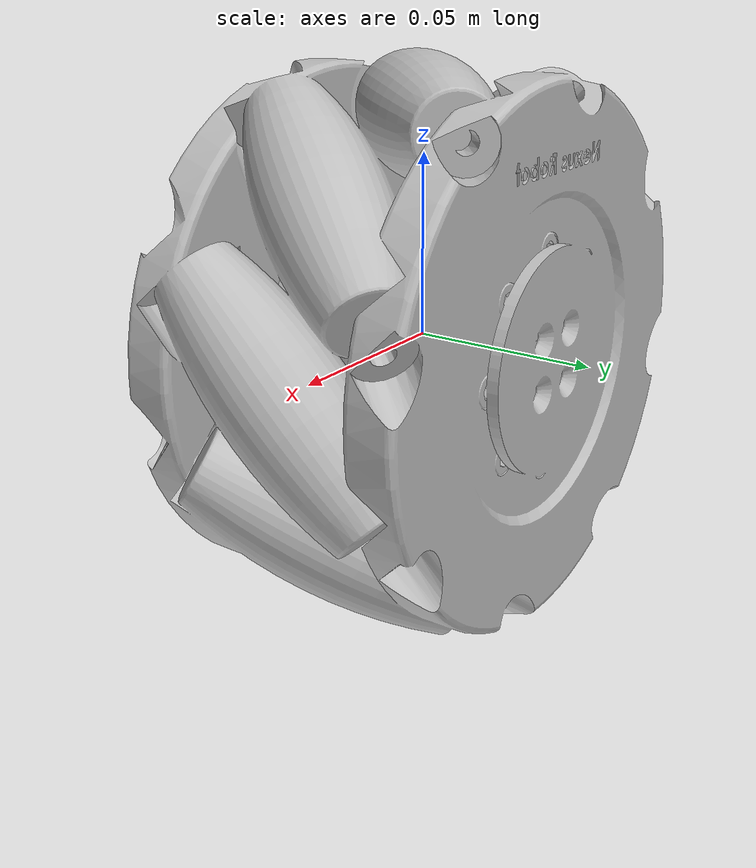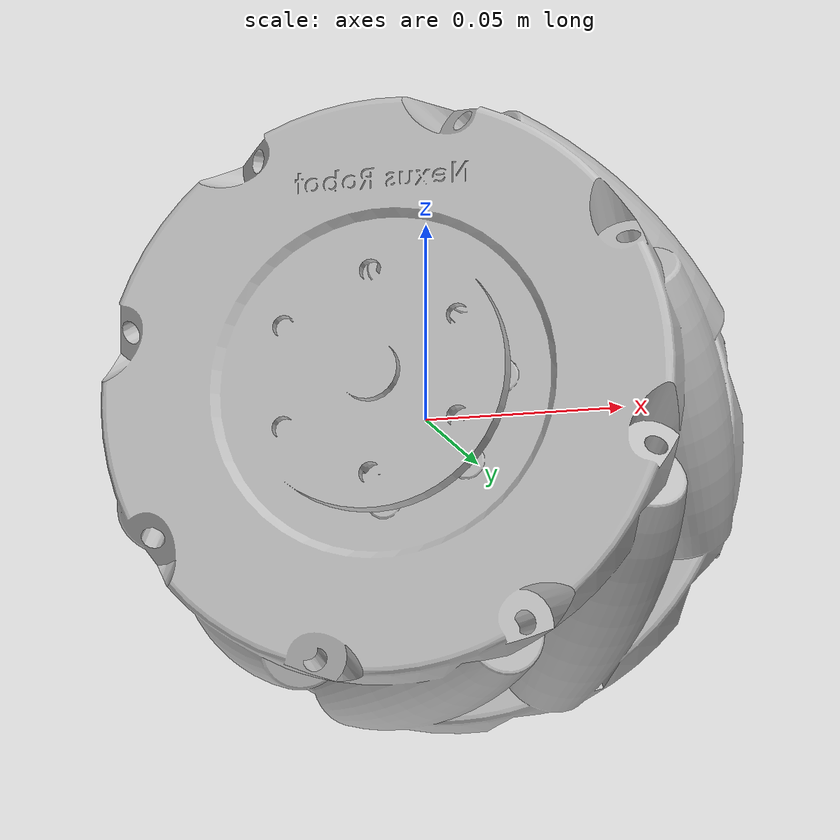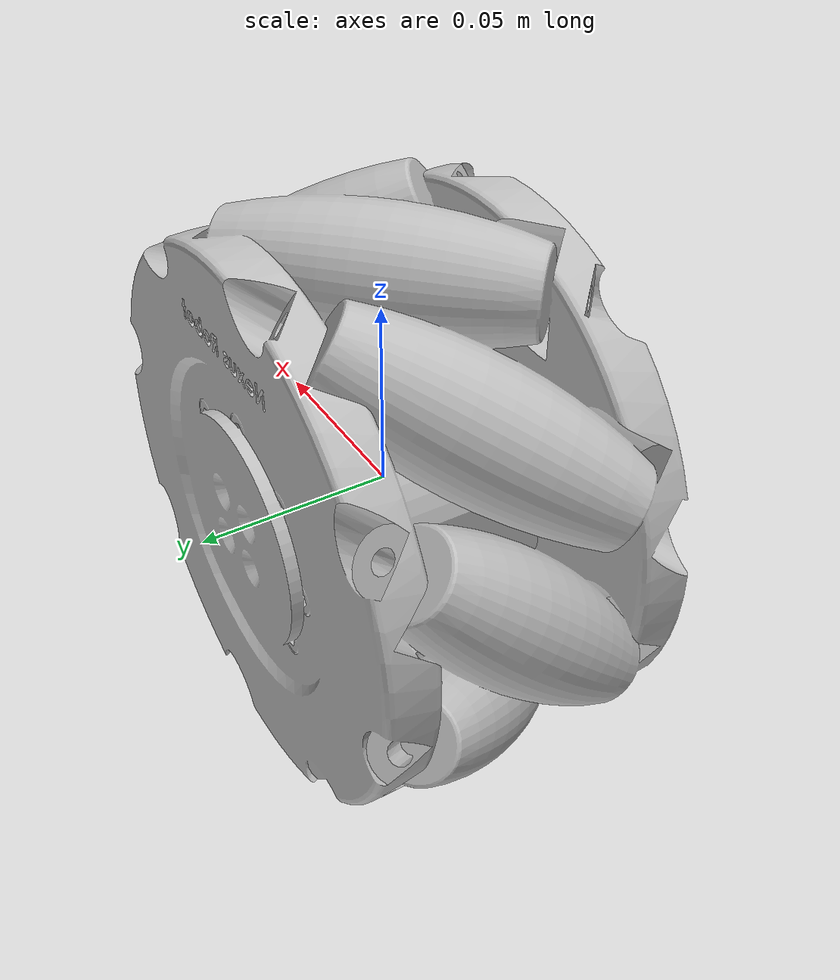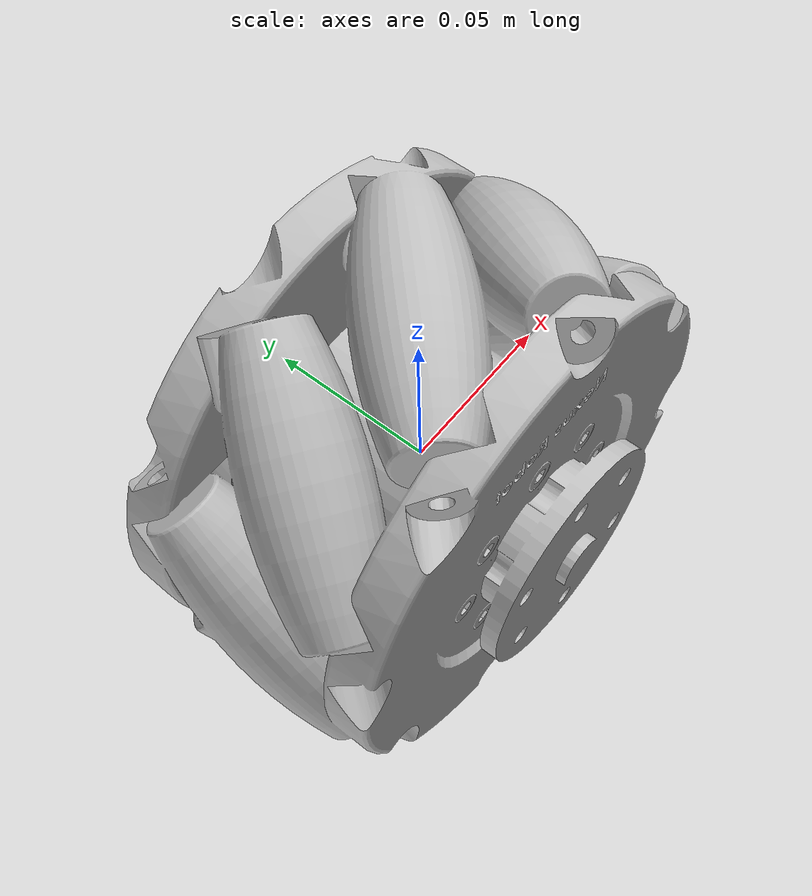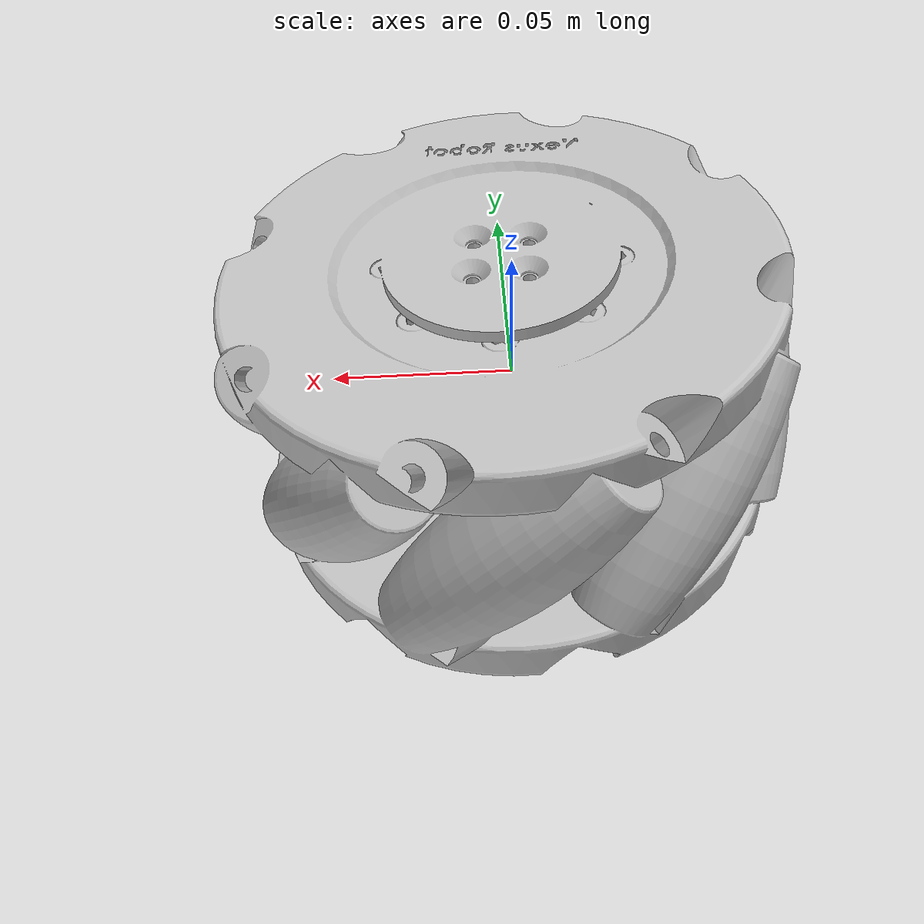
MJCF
<mujoco model="MECANUM_WHEEL_M">
  <default>
    <default class="visual">
      <geom group="2" type="mesh" contype="0" conaffinity="0"/>
    </default>
    <default class="collision">
      <geom group="3" type="mesh"/>
    </default>
  </default>
  <asset>
    <material name="191,191,191.004" specular="0.0" shininess="0.225" rgba="0.749020 0.749020 0.749020 1.000000"/>
    <mesh file="MECANUM_WHEEL_M.obj"/>
  </asset>
  <worldbody>
    <body name="MECANUM_WHEEL_M">
      <geom material="191,191,191.004" mesh="MECANUM_WHEEL_M" class="visual"/>
      <geom mesh="MECANUM_WHEEL_M" class="collision"/>
    </body>
  </worldbody>
</mujoco>
